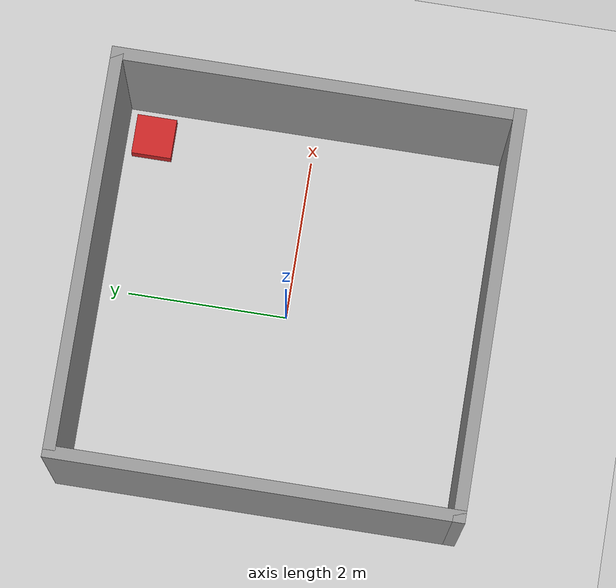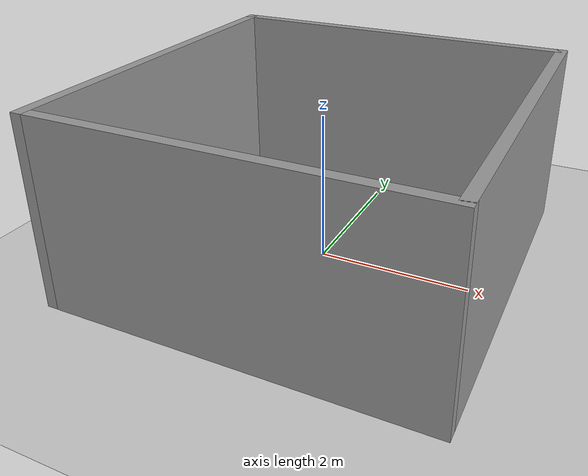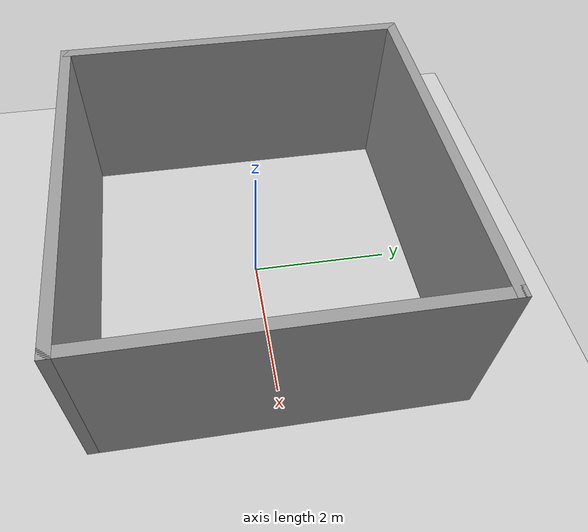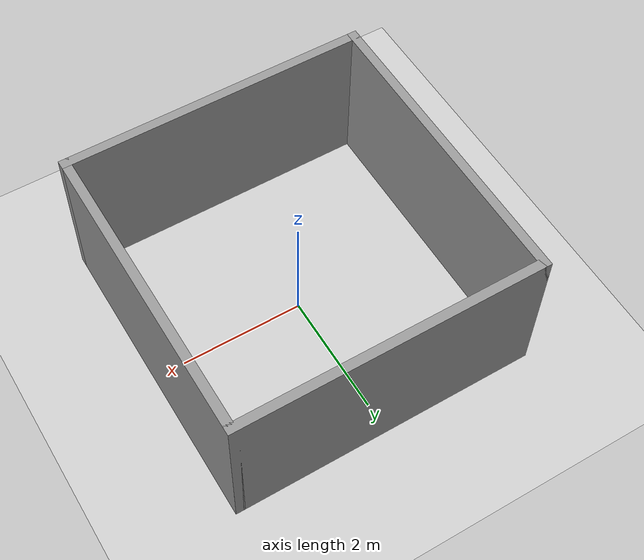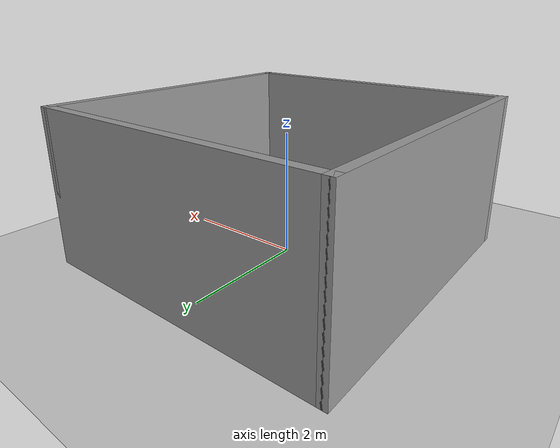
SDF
<sdf version='1.7'>
  <world name='default'>
    <light name='sun' type='directional'>
      <cast_shadows>1</cast_shadows>
      <pose>0 0 10 0 -0 0</pose>
      <diffuse>0.8 0.8 0.8 1</diffuse>
      <specular>0.2 0.2 0.2 1</specular>
      <attenuation>
        <range>1000</range>
        <constant>0.9</constant>
        <linear>0.01</linear>
        <quadratic>0.001</quadratic>
      </attenuation>
      <direction>-0.5 0.1 -0.9</direction>
      <spot>
        <inner_angle>0</inner_angle>
        <outer_angle>0</outer_angle>
        <falloff>0</falloff>
      </spot>
    </light>
    <model name='ground_plane'>
      <static>1</static>
      <link name='link'>
        <collision name='collision'>
          <geometry>
            <plane>
              <normal>0 0 1</normal>
              <size>100 100</size>
            </plane>
          </geometry>
          <surface>
            <contact>
              <collide_bitmask>65535</collide_bitmask>
              <ode/>
            </contact>
            <friction>
              <ode>
                <mu>100</mu>
                <mu2>50</mu2>
              </ode>
              <torsional>
                <ode/>
              </torsional>
            </friction>
            <bounce/>
          </surface>
          <max_contacts>10</max_contacts>
        </collision>
        <visual name='visual'>
          <cast_shadows>0</cast_shadows>
          <geometry>
            <plane>
              <normal>0 0 1</normal>
              <size>100 100</size>
            </plane>
          </geometry>
          <material>
            <script>
              <uri>file://media/materials/scripts/gazebo.material</uri>
              <name>Gazebo/Grey</name>
            </script>
          </material>
        </visual>
        <self_collide>0</self_collide>
        <enable_wind>0</enable_wind>
        <kinematic>0</kinematic>
      </link>
    </model>
    <gravity>0 0 -9.8</gravity>
    <magnetic_field>6e-06 2.3e-05 -4.2e-05</magnetic_field>
    <atmosphere type='adiabatic'/>
    <physics type='ode'>
      <max_step_size>0.001</max_step_size>
      <real_time_factor>1</real_time_factor>
      <real_time_update_rate>1000</real_time_update_rate>
    </physics>
    <scene>
      <ambient>0.4 0.4 0.4 1</ambient>
      <background>0.7 0.7 0.7 1</background>
      <shadows>1</shadows>
    </scene>
    <audio>
      <device>default</device>
    </audio>
    <wind/>
    <spherical_coordinates>
      <surface_model>EARTH_WGS84</surface_model>
      <latitude_deg>0</latitude_deg>
      <longitude_deg>0</longitude_deg>
      <elevation>0</elevation>
      <heading_deg>0</heading_deg>
    </spherical_coordinates>
    <model name='room_walls'>
      <pose>0 0 0 0 -0 0</pose>
      <link name='Wall_0'>
        <collision name='Wall_0_Collision'>
          <geometry>
            <box>
              <size>5 0.15 2.5</size>
            </box>
          </geometry>
          <pose>0 0 1.25 0 -0 0</pose>
          <max_contacts>10</max_contacts>
          <surface>
            <contact>
              <ode/>
            </contact>
            <bounce/>
            <friction>
              <torsional>
                <ode/>
              </torsional>
              <ode/>
            </friction>
          </surface>
        </collision>
        <visual name='Wall_0_Visual'>
          <pose>0 0 1.25 0 -0 0</pose>
          <geometry>
            <box>
              <size>5 0.15 2.5</size>
            </box>
          </geometry>
          <material>
            <script>
              <uri>file://media/materials/scripts/gazebo.material</uri>
              <name>Gazebo/Grey</name>
            </script>
            <ambient>1 1 1 1</ambient>
          </material>
          <meta>
            <layer>0</layer>
          </meta>
        </visual>
        <pose>-2.425 0 0 0 -0 1.5708</pose>
        <self_collide>0</self_collide>
        <enable_wind>0</enable_wind>
        <kinematic>0</kinematic>
      </link>
      <link name='Wall_1'>
        <collision name='Wall_1_Collision'>
          <geometry>
            <box>
              <size>5 0.15 2.5</size>
            </box>
          </geometry>
          <pose>0 0 1.25 0 -0 0</pose>
          <max_contacts>10</max_contacts>
          <surface>
            <contact>
              <ode/>
            </contact>
            <bounce/>
            <friction>
              <torsional>
                <ode/>
              </torsional>
              <ode/>
            </friction>
          </surface>
        </collision>
        <visual name='Wall_1_Visual'>
          <pose>0 0 1.25 0 -0 0</pose>
          <geometry>
            <box>
              <size>5 0.15 2.5</size>
            </box>
          </geometry>
          <material>
            <script>
              <uri>file://media/materials/scripts/gazebo.material</uri>
              <name>Gazebo/Grey</name>
            </script>
            <ambient>1 1 1 1</ambient>
          </material>
          <meta>
            <layer>0</layer>
          </meta>
        </visual>
        <pose>0 2.425 0 0 -0 0</pose>
        <self_collide>0</self_collide>
        <enable_wind>0</enable_wind>
        <kinematic>0</kinematic>
      </link>
      <link name='Wall_2'>
        <collision name='Wall_2_Collision'>
          <geometry>
            <box>
              <size>5 0.15 2.5</size>
            </box>
          </geometry>
          <pose>0 0 1.25 0 -0 0</pose>
          <max_contacts>10</max_contacts>
          <surface>
            <contact>
              <ode/>
            </contact>
            <bounce/>
            <friction>
              <torsional>
                <ode/>
              </torsional>
              <ode/>
            </friction>
          </surface>
        </collision>
        <visual name='Wall_2_Visual'>
          <pose>0 0 1.25 0 -0 0</pose>
          <geometry>
            <box>
              <size>5 0.15 2.5</size>
            </box>
          </geometry>
          <material>
            <script>
              <uri>file://media/materials/scripts/gazebo.material</uri>
              <name>Gazebo/Grey</name>
            </script>
            <ambient>1 1 1 1</ambient>
          </material>
          <meta>
            <layer>0</layer>
          </meta>
        </visual>
        <pose>2.425 0 0 0 -0 -1.5708</pose>
        <self_collide>0</self_collide>
        <enable_wind>0</enable_wind>
        <kinematic>0</kinematic>
      </link>
      <link name='Wall_3'>
        <collision name='Wall_3_Collision'>
          <geometry>
            <box>
              <size>5 0.15 2.5</size>
            </box>
          </geometry>
          <pose>0 0 1.25 0 -0 0</pose>
          <max_contacts>10</max_contacts>
          <surface>
            <contact>
              <ode/>
            </contact>
            <bounce/>
            <friction>
              <torsional>
                <ode/>
              </torsional>
              <ode/>
            </friction>
          </surface>
        </collision>
        <visual name='Wall_3_Visual'>
          <pose>0 0 1.25 0 -0 0</pose>
          <geometry>
            <box>
              <size>5 0.15 2.5</size>
            </box>
          </geometry>
          <material>
            <script>
              <uri>file://media/materials/scripts/gazebo.material</uri>
              <name>Gazebo/Grey</name>
            </script>
            <ambient>1 1 1 1</ambient>
          </material>
          <meta>
            <layer>0</layer>
          </meta>
        </visual>
        <pose>0 -2.425 0 0 -0 3.14159</pose>
        <self_collide>0</self_collide>
        <enable_wind>0</enable_wind>
        <kinematic>0</kinematic>
      </link>
      <static>1</static>
    </model>
    <model name='dock_station'>
      <pose>2 2 0.1 0 0 0</pose>
      <link name='link'>
        <collision name='collision'>
          <geometry>
            <box>
              <size>0.5 0.5 0.2</size>
            </box>
          </geometry>
        </collision>
        <visual name='visual'>
          <geometry>
            <box>
              <size>0.5 0.5 0.2</size>
            </box>
          </geometry>
          <material>
            <script>
              <uri>file://media/materials/scripts/gazebo.material</uri>
              <name>Gazebo/Red</name>
            </script>
          </material>
        </visual>
      </link>
      <static>1</static>
    </model>
  </world>
</sdf>
